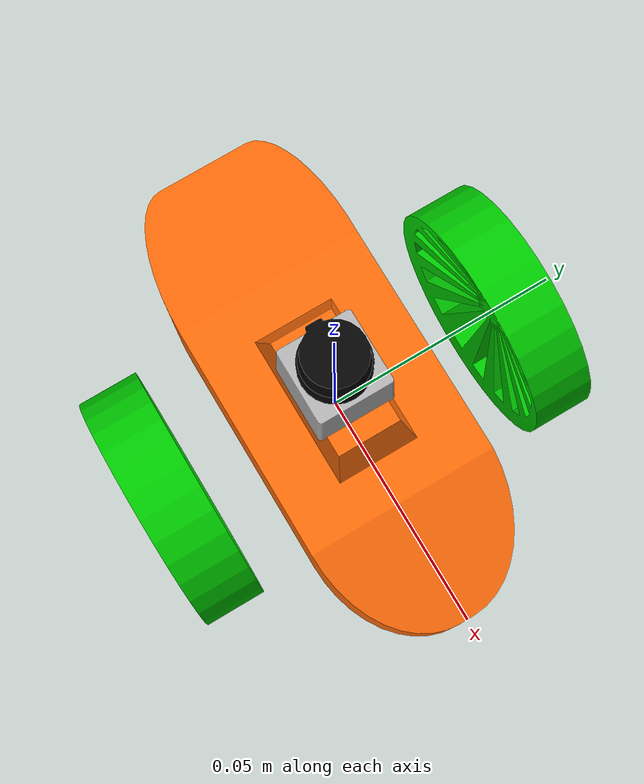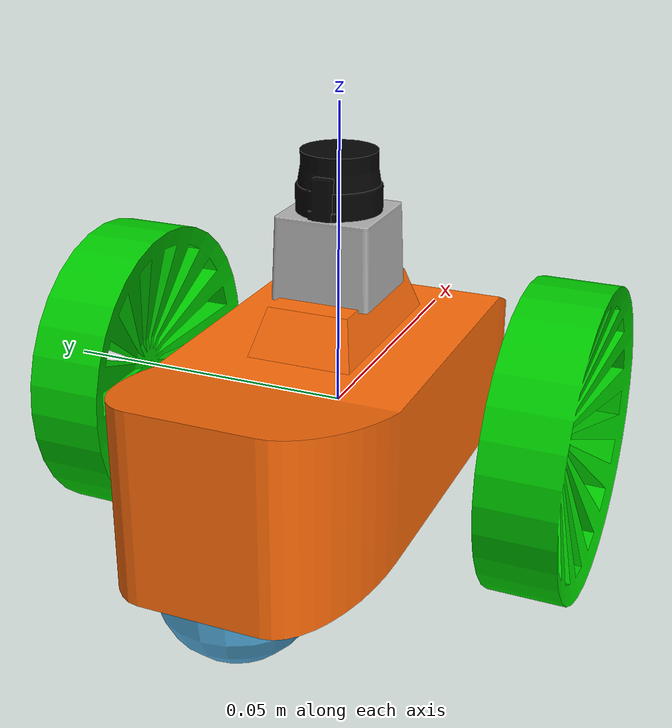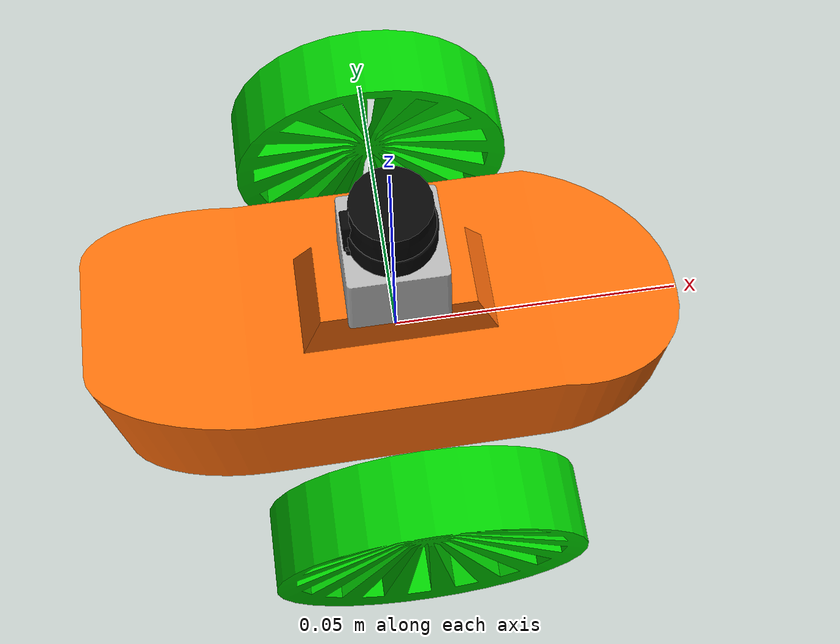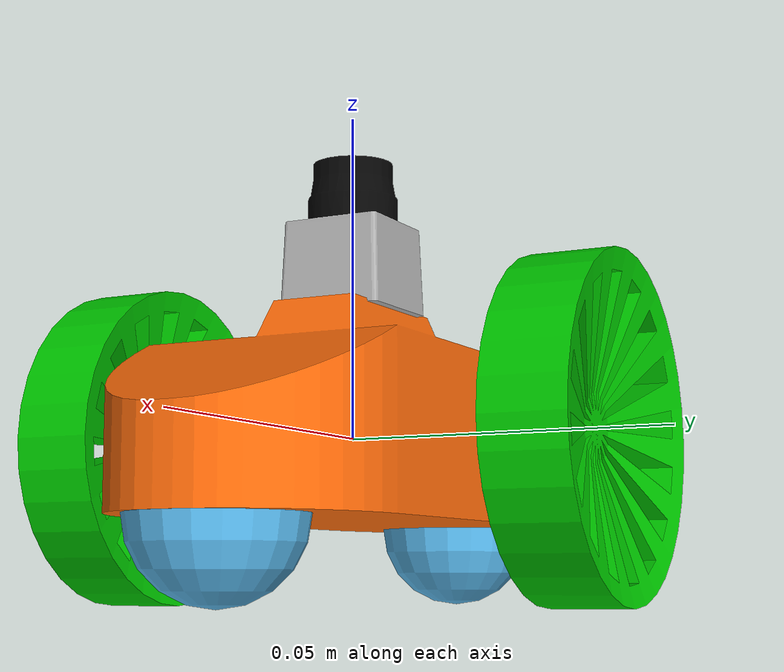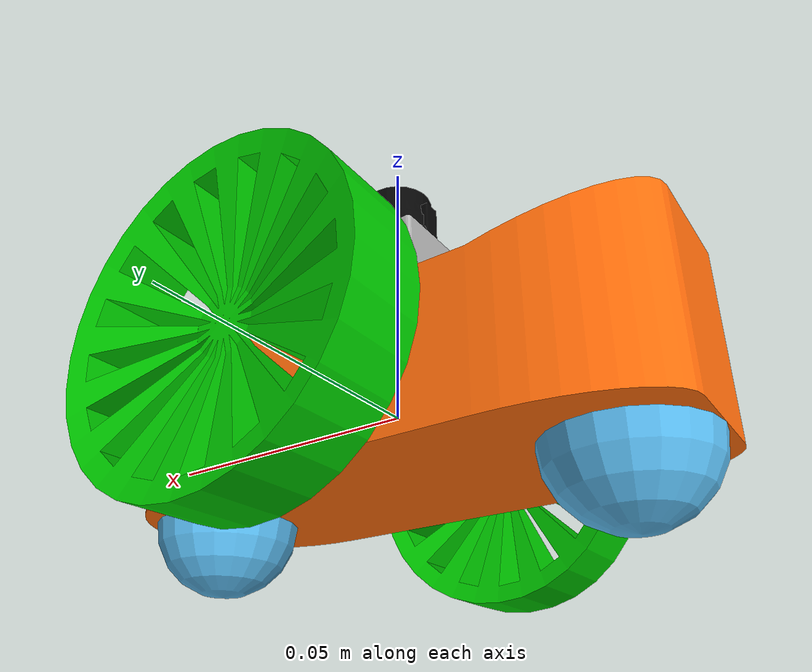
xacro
<?xml version='1.0'?>

<robot name="umouse_robot" xmlns:xacro="http://www.ros.org/wiki/xacro">

  <!-- STEP 3 - Gazebo plugin -->
  <xacro:include filename="$(find bme_ros_micromouse)/urdf/umouse_robot.gazebo" />

  <!-- STEP 4 - RViz colors -->
  <xacro:include filename="$(find bme_ros_micromouse)/urdf/materials.xacro" />

  <!-- STEP 1 - Robot chassis -->
  <link name="base_footprint"></link>

  <joint name="base_footprint_joint" type="fixed">
    <origin xyz="0 0 0" rpy="0 0 0" />
    <parent link="base_footprint"/>
    <child link="base_link" />
  </joint>

  <link name='base_link'>
    <pose>0 0 0.1 0 0 0</pose>

    <inertial>
      <mass value="3.75"/>
      <origin xyz="0.0 0 0" rpy=" 0 0 0"/>
      <inertia
          ixx="0.01" ixy="0" ixz="0"
          iyy="0.01" iyz="0"
          izz="0.01"
      />
    </inertial>

    <collision name='collision'>
      <origin xyz="0 0 0" rpy=" 0 0 0"/>
      <geometry>
        <box size=".1 .05 .025"/>
      </geometry>
    </collision>

    <visual name='base_link_visual'>
      <origin xyz="0 0 0" rpy=" 0 0 0"/>
      <geometry>
        <mesh filename = "package://bme_ros_micromouse/meshes/body.dae"/>
      </geometry>
      <material name="orange"/>
    </visual>

    <collision name='rear_caster_collision'>
      <origin xyz="-0.0375 0 -0.0125" rpy=" 0 0 0"/>
      <geometry>
        <sphere radius="0.0124"/>
      </geometry>
    </collision>

    <visual name='rear_caster_visual'>
      <origin xyz="-0.0375 0 -0.0125" rpy=" 0 0 0"/>
      <geometry>
        <sphere radius="0.0125"/>
      </geometry>
    </visual>

    <collision name='front_caster_collision'>
      <origin xyz="0.0375 0 -0.0125" rpy=" 0 0 0"/>
      <geometry>
        <sphere radius="0.0124"/>
      </geometry>
    </collision>

    <visual name='front_caster_visual'>
      <origin xyz="0.0375 0 -0.0125" rpy=" 0 0 0"/>
      <geometry>
        <sphere radius="0.0125"/>
      </geometry>
    </visual>

  </link>

  <!-- STEP 2 - Wheels -->
  <joint type="continuous" name="left_wheel_joint">
    <origin xyz="0 0.0375 0" rpy="0 0 0"/>
    <child link="left_wheel"/>
    <parent link="base_link"/>
    <axis xyz="0 1 0" rpy="0 0 0"/>
    <limit effort="10000" velocity="1000"/>
    <dynamics damping="1.0" friction="1.0"/>
  </joint>

  <link name='left_wheel'>
    <inertial>
      <mass value="1.25"/>
      <origin xyz="0 0 0" rpy="0 1.5707 1.5707"/>
      <inertia
          ixx="0.01" ixy="0" ixz="0"
          iyy="0.01" iyz="0"
          izz="0.01"
      />
    </inertial>

    <collision name='collision'>
      <origin xyz="0 0 0" rpy="0 1.5707 1.57070"/>
      <geometry>
        <cylinder radius=".025" length=".0125"/>
      </geometry>
    </collision>

    <visual name='left_wheel_visual'>
      <origin xyz="0 0 0" rpy="0 1.5707 1.5707"/>
      <geometry>
        <mesh filename = "package://bme_ros_micromouse/meshes/wheel.dae"/>
      </geometry>
      <material name="green"/>
    </visual>
  </link>

  <joint type="continuous" name="right_wheel_joint">
    <origin xyz="0 -0.0375 0" rpy="0 0 0"/>
    <child link="right_wheel"/>
    <parent link="base_link"/>
    <axis xyz="0 1 0" rpy="0 0 0"/>
    <limit effort="10000" velocity="1000"/>
    <dynamics damping="1.0" friction="1.0"/>
  </joint>

  <link name='right_wheel'>
    <inertial>
      <mass value="1.25"/>
      <origin xyz="0 0 0" rpy="0 1.5707 1.5707"/>
      <inertia
          ixx="0.01" ixy="0" ixz="0"
          iyy="0.01" iyz="0"
          izz="0.01"
      />
    </inertial>

    <collision name='collision'>
      <origin xyz="0 0 0" rpy="0 1.5707 1.5707"/>
      <geometry>
        <cylinder radius=".025" length=".0125"/>
      </geometry>
    </collision>

    <visual name='right_wheel_visual'>
      <origin xyz="0 0 0" rpy="0 1.5707 1.5707"/>
      <geometry>
        <mesh filename = "package://bme_ros_micromouse/meshes/wheel.dae"/>
      </geometry>
      <material name="green"/>
    </visual>
  </link>

  <!-- IMU -->
  <joint name="imu_joint" type="fixed">
    <origin xyz="0 0 0" rpy="0 0 0" />
    <parent link="base_link"/>
    <child link="imu_link" />
  </joint>

  <link name="imu_link">
  </link>

<!-- Lidar -->
  <joint type="fixed" name="scan_joint">
    <origin xyz="0.0 0 0.031" rpy="0 0 0"/>
    <child link="scan_link"/>
    <parent link="base_link"/>
    <axis xyz="0 1 0" rpy="0 0 0"/>
  </joint>

  <link name='scan_link'>
    <inertial>
      <mass value="1e-5"/>
      <origin xyz="0 0 0" rpy="0 0 0"/>
      <inertia
          ixx="1e-6" ixy="0" ixz="0"
          iyy="1e-6" iyz="0"
          izz="1e-6"
      />
    </inertial>

    <collision name='collision'>
      <origin xyz="0 0 0" rpy="0 0 0"/>
      <geometry>
        <box size=".025 .025 .025"/>
      </geometry>
    </collision>

    <visual name='scan_link_visual'>
      <origin xyz="0 0 0" rpy="0 0 0"/>
      <geometry>
        <mesh filename = "package://bme_ros_micromouse/meshes/lidar.dae"/>
      </geometry>
    </visual>

  </link>

</robot>

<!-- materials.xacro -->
<robot>

  <material name="black">
    <color rgba="0.0 0.0 0.0 1.0"/>
  </material>

  <material name="white">
    <color rgba="1.0 1.0 1.0 1.0"/>
  </material>

  <material name="red">
    <color rgba="0.8 0.0 0.0 1.0"/>
  </material>

  <material name="blue">
    <color rgba="0.0 0.0 0.8 1.0"/>
  </material>

  <material name="green">
    <color rgba="0.0 0.8 0.0 1.0"/>
  </material>

  <material name="grey">
    <color rgba="0.5 0.5 0.5 1.0"/>
  </material>

  <material name="orange">
    <color rgba="${255/255} ${108/255} ${10/255} 1.0"/>
  </material>

  <material name="brown">
    <color rgba="${222/255} ${207/255} ${195/255} 1.0"/>
  </material>

  <material name="pink">
    <color rgba="${255/255} ${108/255} ${148/255} 1.0"/>
  </material>

</robot>
